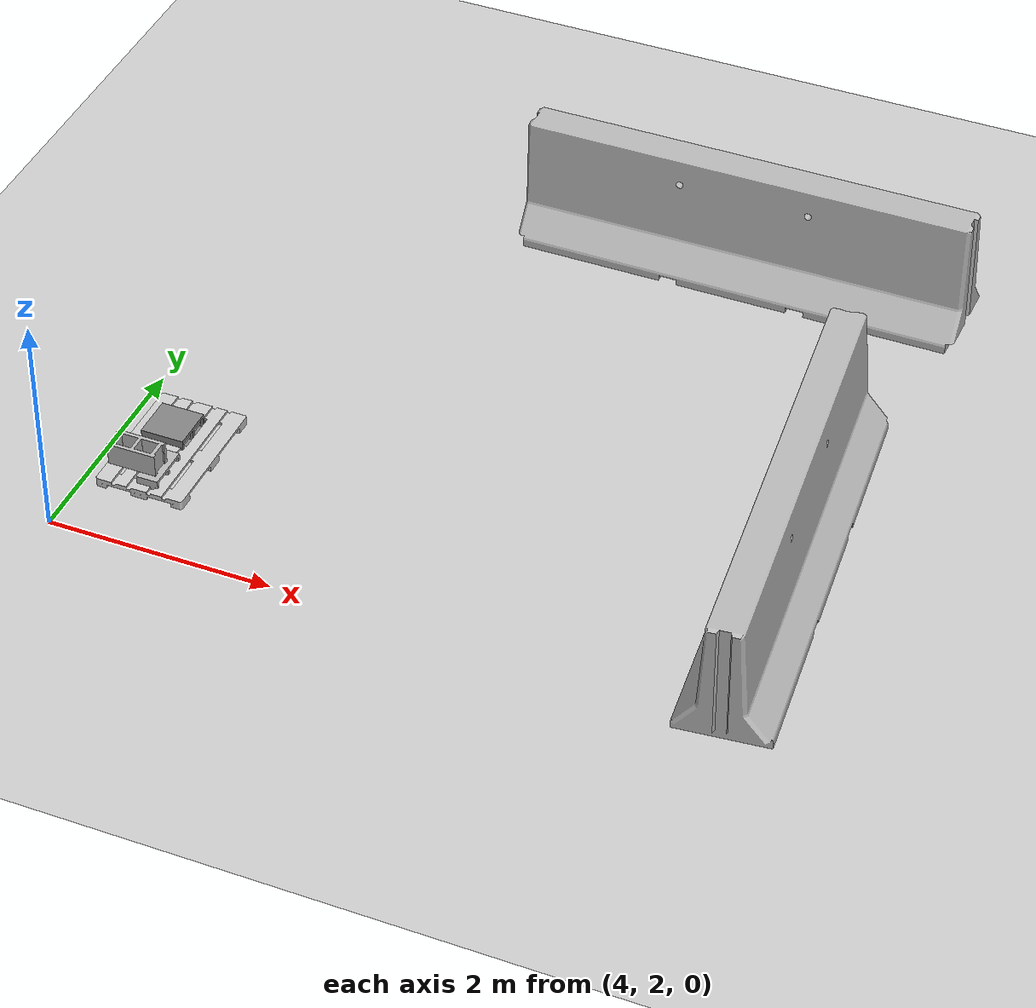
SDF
<sdf version="1.6">
 <world name="default">
  <model name="ground_plane">
   <static>1</static>
   <link name="link">
    <collision name="collision">
     <geometry><plane><normal>0 0 1</normal><size>100 100</size></plane></geometry>
     <surface>
      <contact><collide_bitmask>65535</collide_bitmask></contact>
      <friction><ode><mu>100</mu><mu2>50</mu2></ode></friction>
     </surface>
    </collision>
    <visual name="visual">
     <cast_shadows>0</cast_shadows>
     <geometry><plane><normal>0 0 1</normal><size>100 100</size></plane></geometry>
     <material>
      <script><uri>file://media/materials/scripts/gazebo.material</uri><name>Gazebo/Grey</name></script>
     </material>
    </visual>
   </link>
  </model>
  <model name="euro_pallet_static">
   <link name="link">
    <inertial>
     <mass>20</mass>
     <inertia><ixx>2.43</ixx><ixy>0</ixy><ixz>0</ixz><iyy>1.1</iyy><iyz>0</iyz><izz>3.47</izz></inertia>
    </inertial>
    <visual name="visual">
     <pose>0 0 0.05 0 -0 0</pose>
     <geometry><mesh><uri>model://euro_pallet/meshes/pallet.dae</uri><scale>0.1 0.1 0.1</scale></mesh></geometry>
    </visual>
    <collision name="collision">
     <pose>0 0 0.05 0 -0 0</pose>
     <geometry>
      <mesh><uri>~/.gazebo/models/euro_pallet/meshes/pallet.dae</uri><scale>0.1 0.1 0.1</scale></mesh>
     </geometry>
     <surface>
      <friction>
       <ode><mu>1</mu><mu2>1</mu2><fdir1>0 0 0</fdir1><slip1>0</slip1><slip2>0</slip2></ode>
       <torsional>
        <coefficient>1</coefficient>
        <patch_radius>0</patch_radius>
        <surface_radius>0</surface_radius>
        <use_patch_radius>1</use_patch_radius>
        <ode><slip>0</slip></ode>
       </torsional>
      </friction>
      <bounce><restitution_coefficient>0</restitution_coefficient><threshold>1e+06</threshold></bounce>
      <contact>
       <collide_without_contact>0</collide_without_contact>
       <collide_without_contact_bitmask>1</collide_without_contact_bitmask>
       <collide_bitmask>1</collide_bitmask>
       <ode>
        <soft_cfm>0</soft_cfm>
        <soft_erp>0.2</soft_erp>
        <kp>1e+13</kp>
        <kd>1</kd>
        <max_vel>0.01</max_vel>
        <min_depth>0</min_depth>
       </ode>
       <bullet>
        <split_impulse>1</split_impulse>
        <split_impulse_penetration_threshold>-0.01</split_impulse_penetration_threshold>
        <soft_cfm>0</soft_cfm>
        <soft_erp>0.2</soft_erp>
        <kp>1e+13</kp>
        <kd>1</kd>
       </bullet>
      </contact>
     </surface>
    </collision>
   </link>
   <static>1</static>
   <pose>4.52441 3.15783 0 0 -0 0</pose>
  </model>
  <model name="cinder_block_2_static_0">
   <link name="link">
    <inertial>
     <pose>0 0 0.071438 0 -0 0</pose>
     <mass>5</mass>
     <inertia>
      <ixx>0.06908</ixx>
      <ixy>0</ixy>
      <iyy>0.028705</iyy>
      <ixz>0</ixz>
      <iyz>0</iyz>
      <izz>0.073708</izz>
     </inertia>
    </inertial>
    <visual name="visual">
     <geometry><mesh><uri>model://cinder_block_2/meshes/cinder_block.dae</uri></mesh></geometry>
    </visual>
    <collision name="top">
     <pose>0 0 0.130175 0 -0 0</pose>
     <geometry><box><size>0.19368 0.396875 0.0254</size></box></geometry>
     <surface>
      <friction>
       <ode><mu>1</mu><mu2>1</mu2><fdir1>0 0 0</fdir1><slip1>0</slip1><slip2>0</slip2></ode>
       <torsional>
        <coefficient>1</coefficient>
        <patch_radius>0</patch_radius>
        <surface_radius>0</surface_radius>
        <use_patch_radius>1</use_patch_radius>
        <ode><slip>0</slip></ode>
       </torsional>
      </friction>
      <bounce><restitution_coefficient>0</restitution_coefficient><threshold>1e+06</threshold></bounce>
      <contact>
       <collide_without_contact>0</collide_without_contact>
       <collide_without_contact_bitmask>1</collide_without_contact_bitmask>
       <collide_bitmask>1</collide_bitmask>
       <ode>
        <soft_cfm>0</soft_cfm>
        <soft_erp>0.2</soft_erp>
        <kp>1e+13</kp>
        <kd>1</kd>
        <max_vel>0.1</max_vel>
        <min_depth>0.001</min_depth>
       </ode>
       <bullet>
        <split_impulse>1</split_impulse>
        <split_impulse_penetration_threshold>-0.01</split_impulse_penetration_threshold>
        <soft_cfm>0</soft_cfm>
        <soft_erp>0.2</soft_erp>
        <kp>1e+13</kp>
        <kd>1</kd>
       </bullet>
      </contact>
     </surface>
    </collision>
    <collision name="bottom">
     <pose>0 0 0.0127 0 -0 0</pose>
     <geometry><box><size>0.19368 0.396875 0.0254</size></box></geometry>
     <surface>
      <friction>
       <ode><mu>1</mu><mu2>1</mu2><fdir1>0 0 0</fdir1><slip1>0</slip1><slip2>0</slip2></ode>
       <torsional>
        <coefficient>1</coefficient>
        <patch_radius>0</patch_radius>
        <surface_radius>0</surface_radius>
        <use_patch_radius>1</use_patch_radius>
        <ode><slip>0</slip></ode>
       </torsional>
      </friction>
      <bounce><restitution_coefficient>0</restitution_coefficient><threshold>1e+06</threshold></bounce>
      <contact>
       <collide_without_contact>0</collide_without_contact>
       <collide_without_contact_bitmask>1</collide_without_contact_bitmask>
       <collide_bitmask>1</collide_bitmask>
       <ode>
        <soft_cfm>0</soft_cfm>
        <soft_erp>0.2</soft_erp>
        <kp>1e+13</kp>
        <kd>1</kd>
        <max_vel>0.1</max_vel>
        <min_depth>0.001</min_depth>
       </ode>
       <bullet>
        <split_impulse>1</split_impulse>
        <split_impulse_penetration_threshold>-0.01</split_impulse_penetration_threshold>
        <soft_cfm>0</soft_cfm>
        <soft_erp>0.2</soft_erp>
        <kp>1e+13</kp>
        <kd>1</kd>
       </bullet>
      </contact>
     </surface>
    </collision>
    <collision name="left">
     <pose>0 -0.185738 0.071438 0 -0 0</pose>
     <geometry><box><size>0.19368 0.0254 0.092075</size></box></geometry>
     <surface>
      <friction>
       <ode><mu>1</mu><mu2>1</mu2><fdir1>0 0 0</fdir1><slip1>0</slip1><slip2>0</slip2></ode>
       <torsional>
        <coefficient>1</coefficient>
        <patch_radius>0</patch_radius>
        <surface_radius>0</surface_radius>
        <use_patch_radius>1</use_patch_radius>
        <ode><slip>0</slip></ode>
       </torsional>
      </friction>
      <bounce><restitution_coefficient>0</restitution_coefficient><threshold>1e+06</threshold></bounce>
      <contact>
       <collide_without_contact>0</collide_without_contact>
       <collide_without_contact_bitmask>1</collide_without_contact_bitmask>
       <collide_bitmask>1</collide_bitmask>
       <ode>
        <soft_cfm>0</soft_cfm>
        <soft_erp>0.2</soft_erp>
        <kp>1e+13</kp>
        <kd>1</kd>
        <max_vel>0.1</max_vel>
        <min_depth>0.001</min_depth>
       </ode>
       <bullet>
        <split_impulse>1</split_impulse>
        <split_impulse_penetration_threshold>-0.01</split_impulse_penetration_threshold>
        <soft_cfm>0</soft_cfm>
        <soft_erp>0.2</soft_erp>
        <kp>1e+13</kp>
        <kd>1</kd>
       </bullet>
      </contact>
     </surface>
    </collision>
    <collision name="middle">
     <pose>0 0 0.071438 0 -0 0</pose>
     <geometry><box><size>0.19368 0.0254 0.092075</size></box></geometry>
     <surface>
      <friction>
       <ode><mu>1</mu><mu2>1</mu2><fdir1>0 0 0</fdir1><slip1>0</slip1><slip2>0</slip2></ode>
       <torsional>
        <coefficient>1</coefficient>
        <patch_radius>0</patch_radius>
        <surface_radius>0</surface_radius>
        <use_patch_radius>1</use_patch_radius>
        <ode><slip>0</slip></ode>
       </torsional>
      </friction>
      <bounce><restitution_coefficient>0</restitution_coefficient><threshold>1e+06</threshold></bounce>
      <contact>
       <collide_without_contact>0</collide_without_contact>
       <collide_without_contact_bitmask>1</collide_without_contact_bitmask>
       <collide_bitmask>1</collide_bitmask>
       <ode>
        <soft_cfm>0</soft_cfm>
        <soft_erp>0.2</soft_erp>
        <kp>1e+13</kp>
        <kd>1</kd>
        <max_vel>0.1</max_vel>
        <min_depth>0.001</min_depth>
       </ode>
       <bullet>
        <split_impulse>1</split_impulse>
        <split_impulse_penetration_threshold>-0.01</split_impulse_penetration_threshold>
        <soft_cfm>0</soft_cfm>
        <soft_erp>0.2</soft_erp>
        <kp>1e+13</kp>
        <kd>1</kd>
       </bullet>
      </contact>
     </surface>
    </collision>
    <collision name="right">
     <pose>0 0.185738 0.071438 0 -0 0</pose>
     <geometry><box><size>0.19368 0.0254 0.092075</size></box></geometry>
     <surface>
      <friction>
       <ode><mu>1</mu><mu2>1</mu2><fdir1>0 0 0</fdir1><slip1>0</slip1><slip2>0</slip2></ode>
       <torsional>
        <coefficient>1</coefficient>
        <patch_radius>0</patch_radius>
        <surface_radius>0</surface_radius>
        <use_patch_radius>1</use_patch_radius>
        <ode><slip>0</slip></ode>
       </torsional>
      </friction>
      <bounce><restitution_coefficient>0</restitution_coefficient><threshold>1e+06</threshold></bounce>
      <contact>
       <collide_without_contact>0</collide_without_contact>
       <collide_without_contact_bitmask>1</collide_without_contact_bitmask>
       <collide_bitmask>1</collide_bitmask>
       <ode>
        <soft_cfm>0</soft_cfm>
        <soft_erp>0.2</soft_erp>
        <kp>1e+13</kp>
        <kd>1</kd>
        <max_vel>0.1</max_vel>
        <min_depth>0.001</min_depth>
       </ode>
       <bullet>
        <split_impulse>1</split_impulse>
        <split_impulse_penetration_threshold>-0.01</split_impulse_penetration_threshold>
        <soft_cfm>0</soft_cfm>
        <soft_erp>0.2</soft_erp>
        <kp>1e+13</kp>
        <kd>1</kd>
       </bullet>
      </contact>
     </surface>
    </collision>
   </link>
   <static>1</static>
   <pose>4.56736 2.83532 0 0 -0 0</pose>
  </model>
  <model name="cinder_block_static">
   <link name="link">
    <inertial>
     <pose>0 0 0.1016 0 -0 0</pose>
     <mass>5</mass>
     <inertia>
      <ixx>0.028705</ixx>
      <ixy>0</ixy>
      <iyy>0.073708</iyy>
      <ixz>0</ixz>
      <iyz>0</iyz>
      <izz>0.06908</izz>
     </inertia>
    </inertial>
    <visual name="visual">
     <geometry><mesh><uri>model://cinder_block/meshes/cinder_block.dae</uri></mesh></geometry>
    </visual>
    <collision name="left">
     <pose>0 -0.08465 0.1016 0 -0 0</pose>
     <geometry><box><size>0.43495 0.0339 0.2032</size></box></geometry>
     <surface>
      <friction>
       <ode><mu>1</mu><mu2>1</mu2><fdir1>0 0 0</fdir1><slip1>0</slip1><slip2>0</slip2></ode>
       <torsional>
        <coefficient>1</coefficient>
        <patch_radius>0</patch_radius>
        <surface_radius>0</surface_radius>
        <use_patch_radius>1</use_patch_radius>
        <ode><slip>0</slip></ode>
       </torsional>
      </friction>
      <bounce><restitution_coefficient>0</restitution_coefficient><threshold>1e+06</threshold></bounce>
      <contact>
       <collide_without_contact>0</collide_without_contact>
       <collide_without_contact_bitmask>1</collide_without_contact_bitmask>
       <collide_bitmask>1</collide_bitmask>
       <ode>
        <soft_cfm>0</soft_cfm>
        <soft_erp>0.2</soft_erp>
        <kp>1e+13</kp>
        <kd>1</kd>
        <max_vel>0.1</max_vel>
        <min_depth>0.001</min_depth>
       </ode>
       <bullet>
        <split_impulse>1</split_impulse>
        <split_impulse_penetration_threshold>-0.01</split_impulse_penetration_threshold>
        <soft_cfm>0</soft_cfm>
        <soft_erp>0.2</soft_erp>
        <kp>1e+13</kp>
        <kd>1</kd>
       </bullet>
      </contact>
     </surface>
    </collision>
    <collision name="right">
     <pose>0 0.08465 0.1016 0 -0 0</pose>
     <geometry><box><size>0.43495 0.0339 0.2032</size></box></geometry>
     <surface>
      <friction>
       <ode><mu>1</mu><mu2>1</mu2><fdir1>0 0 0</fdir1><slip1>0</slip1><slip2>0</slip2></ode>
       <torsional>
        <coefficient>1</coefficient>
        <patch_radius>0</patch_radius>
        <surface_radius>0</surface_radius>
        <use_patch_radius>1</use_patch_radius>
        <ode><slip>0</slip></ode>
       </torsional>
      </friction>
      <bounce><restitution_coefficient>0</restitution_coefficient><threshold>1e+06</threshold></bounce>
      <contact>
       <collide_without_contact>0</collide_without_contact>
       <collide_without_contact_bitmask>1</collide_without_contact_bitmask>
       <collide_bitmask>1</collide_bitmask>
       <ode>
        <soft_cfm>0</soft_cfm>
        <soft_erp>0.2</soft_erp>
        <kp>1e+13</kp>
        <kd>1</kd>
        <max_vel>0.1</max_vel>
        <min_depth>0.001</min_depth>
       </ode>
       <bullet>
        <split_impulse>1</split_impulse>
        <split_impulse_penetration_threshold>-0.01</split_impulse_penetration_threshold>
        <soft_cfm>0</soft_cfm>
        <soft_erp>0.2</soft_erp>
        <kp>1e+13</kp>
        <kd>1</kd>
       </bullet>
      </contact>
     </surface>
    </collision>
    <collision name="front">
     <pose>0.18625 0 0.1016 0 -0 0</pose>
     <geometry><box><size>0.0339 0.1354 0.203</size></box></geometry>
     <surface>
      <friction>
       <ode><mu>1</mu><mu2>1</mu2><fdir1>0 0 0</fdir1><slip1>0</slip1><slip2>0</slip2></ode>
       <torsional>
        <coefficient>1</coefficient>
        <patch_radius>0</patch_radius>
        <surface_radius>0</surface_radius>
        <use_patch_radius>1</use_patch_radius>
        <ode><slip>0</slip></ode>
       </torsional>
      </friction>
      <bounce><restitution_coefficient>0</restitution_coefficient><threshold>1e+06</threshold></bounce>
      <contact>
       <collide_without_contact>0</collide_without_contact>
       <collide_without_contact_bitmask>1</collide_without_contact_bitmask>
       <collide_bitmask>1</collide_bitmask>
       <ode>
        <soft_cfm>0</soft_cfm>
        <soft_erp>0.2</soft_erp>
        <kp>1e+13</kp>
        <kd>1</kd>
        <max_vel>0.1</max_vel>
        <min_depth>0.001</min_depth>
       </ode>
       <bullet>
        <split_impulse>1</split_impulse>
        <split_impulse_penetration_threshold>-0.01</split_impulse_penetration_threshold>
        <soft_cfm>0</soft_cfm>
        <soft_erp>0.2</soft_erp>
        <kp>1e+13</kp>
        <kd>1</kd>
       </bullet>
      </contact>
     </surface>
    </collision>
    <collision name="middle">
     <pose>0 0 0.1016 0 -0 0</pose>
     <geometry><box><size>0.0339 0.1354 0.203</size></box></geometry>
     <surface>
      <friction>
       <ode><mu>1</mu><mu2>1</mu2><fdir1>0 0 0</fdir1><slip1>0</slip1><slip2>0</slip2></ode>
       <torsional>
        <coefficient>1</coefficient>
        <patch_radius>0</patch_radius>
        <surface_radius>0</surface_radius>
        <use_patch_radius>1</use_patch_radius>
        <ode><slip>0</slip></ode>
       </torsional>
      </friction>
      <bounce><restitution_coefficient>0</restitution_coefficient><threshold>1e+06</threshold></bounce>
      <contact>
       <collide_without_contact>0</collide_without_contact>
       <collide_without_contact_bitmask>1</collide_without_contact_bitmask>
       <collide_bitmask>1</collide_bitmask>
       <ode>
        <soft_cfm>0</soft_cfm>
        <soft_erp>0.2</soft_erp>
        <kp>1e+13</kp>
        <kd>1</kd>
        <max_vel>0.1</max_vel>
        <min_depth>0.001</min_depth>
       </ode>
       <bullet>
        <split_impulse>1</split_impulse>
        <split_impulse_penetration_threshold>-0.01</split_impulse_penetration_threshold>
        <soft_cfm>0</soft_cfm>
        <soft_erp>0.2</soft_erp>
        <kp>1e+13</kp>
        <kd>1</kd>
       </bullet>
      </contact>
     </surface>
    </collision>
    <collision name="back">
     <pose>-0.18625 0 0.1016 0 -0 0</pose>
     <geometry><box><size>0.0339 0.1354 0.203</size></box></geometry>
     <surface>
      <friction>
       <ode><mu>1</mu><mu2>1</mu2><fdir1>0 0 0</fdir1><slip1>0</slip1><slip2>0</slip2></ode>
       <torsional>
        <coefficient>1</coefficient>
        <patch_radius>0</patch_radius>
        <surface_radius>0</surface_radius>
        <use_patch_radius>1</use_patch_radius>
        <ode><slip>0</slip></ode>
       </torsional>
      </friction>
      <bounce><restitution_coefficient>0</restitution_coefficient><threshold>1e+06</threshold></bounce>
      <contact>
       <collide_without_contact>0</collide_without_contact>
       <collide_without_contact_bitmask>1</collide_without_contact_bitmask>
       <collide_bitmask>1</collide_bitmask>
       <ode>
        <soft_cfm>0</soft_cfm>
        <soft_erp>0.2</soft_erp>
        <kp>1e+13</kp>
        <kd>1</kd>
        <max_vel>0.1</max_vel>
        <min_depth>0.001</min_depth>
       </ode>
       <bullet>
        <split_impulse>1</split_impulse>
        <split_impulse_penetration_threshold>-0.01</split_impulse_penetration_threshold>
        <soft_cfm>0</soft_cfm>
        <soft_erp>0.2</soft_erp>
        <kp>1e+13</kp>
        <kd>1</kd>
       </bullet>
      </contact>
     </surface>
    </collision>
   </link>
   <static>1</static>
   <pose>4.40047 2.79927 0.14306 0 -0 0</pose>
  </model>
  <model name="cinder_block_wide_static">
   <link name="link">
    <inertial>
     <pose>0 0 0.071438 0 -0 0</pose>
     <mass>5</mass>
     <inertia>
      <ixx>0.0681466</ixx>
      <ixy>0</ixy>
      <iyy>0.0681466</iyy>
      <ixz>0</ixz>
      <iyz>0</iyz>
      <izz>0.124808</izz>
     </inertia>
    </inertial>
    <visual name="visual">
     <geometry><mesh><uri>model://cinder_block_wide/meshes/cinder_block_wide.dae</uri></mesh></geometry>
    </visual>
    <collision name="top">
     <pose>0 0 0.130175 0 -0 0</pose>
     <geometry><box><size>0.387354 0.387354 0.0254</size></box></geometry>
     <surface>
      <friction>
       <ode><mu>1</mu><mu2>1</mu2><fdir1>0 0 0</fdir1><slip1>0</slip1><slip2>0</slip2></ode>
       <torsional>
        <coefficient>1</coefficient>
        <patch_radius>0</patch_radius>
        <surface_radius>0</surface_radius>
        <use_patch_radius>1</use_patch_radius>
        <ode><slip>0</slip></ode>
       </torsional>
      </friction>
      <bounce><restitution_coefficient>0</restitution_coefficient><threshold>1e+06</threshold></bounce>
      <contact>
       <collide_without_contact>0</collide_without_contact>
       <collide_without_contact_bitmask>1</collide_without_contact_bitmask>
       <collide_bitmask>1</collide_bitmask>
       <ode>
        <soft_cfm>0</soft_cfm>
        <soft_erp>0.2</soft_erp>
        <kp>1e+13</kp>
        <kd>1</kd>
        <max_vel>0.1</max_vel>
        <min_depth>0.001</min_depth>
       </ode>
       <bullet>
        <split_impulse>1</split_impulse>
        <split_impulse_penetration_threshold>-0.01</split_impulse_penetration_threshold>
        <soft_cfm>0</soft_cfm>
        <soft_erp>0.2</soft_erp>
        <kp>1e+13</kp>
        <kd>1</kd>
       </bullet>
      </contact>
     </surface>
    </collision>
    <collision name="bottom">
     <pose>0 0 0.0127 0 -0 0</pose>
     <geometry><box><size>0.387354 0.387354 0.0254</size></box></geometry>
     <surface>
      <friction>
       <ode><mu>1</mu><mu2>1</mu2><fdir1>0 0 0</fdir1><slip1>0</slip1><slip2>0</slip2></ode>
       <torsional>
        <coefficient>1</coefficient>
        <patch_radius>0</patch_radius>
        <surface_radius>0</surface_radius>
        <use_patch_radius>1</use_patch_radius>
        <ode><slip>0</slip></ode>
       </torsional>
      </friction>
      <bounce><restitution_coefficient>0</restitution_coefficient><threshold>1e+06</threshold></bounce>
      <contact>
       <collide_without_contact>0</collide_without_contact>
       <collide_without_contact_bitmask>1</collide_without_contact_bitmask>
       <collide_bitmask>1</collide_bitmask>
       <ode>
        <soft_cfm>0</soft_cfm>
        <soft_erp>0.2</soft_erp>
        <kp>1e+13</kp>
        <kd>1</kd>
        <max_vel>0.1</max_vel>
        <min_depth>0.001</min_depth>
       </ode>
       <bullet>
        <split_impulse>1</split_impulse>
        <split_impulse_penetration_threshold>-0.01</split_impulse_penetration_threshold>
        <soft_cfm>0</soft_cfm>
        <soft_erp>0.2</soft_erp>
        <kp>1e+13</kp>
        <kd>1</kd>
       </bullet>
      </contact>
     </surface>
    </collision>
    <collision name="left">
     <pose>0 -0.183355 0.071438 0 -0 0</pose>
     <geometry><box><size>0.387354 0.020643 0.092075</size></box></geometry>
     <surface>
      <friction>
       <ode><mu>1</mu><mu2>1</mu2><fdir1>0 0 0</fdir1><slip1>0</slip1><slip2>0</slip2></ode>
       <torsional>
        <coefficient>1</coefficient>
        <patch_radius>0</patch_radius>
        <surface_radius>0</surface_radius>
        <use_patch_radius>1</use_patch_radius>
        <ode><slip>0</slip></ode>
       </torsional>
      </friction>
      <bounce><restitution_coefficient>0</restitution_coefficient><threshold>1e+06</threshold></bounce>
      <contact>
       <collide_without_contact>0</collide_without_contact>
       <collide_without_contact_bitmask>1</collide_without_contact_bitmask>
       <collide_bitmask>1</collide_bitmask>
       <ode>
        <soft_cfm>0</soft_cfm>
        <soft_erp>0.2</soft_erp>
        <kp>1e+13</kp>
        <kd>1</kd>
        <max_vel>0.1</max_vel>
        <min_depth>0.001</min_depth>
       </ode>
       <bullet>
        <split_impulse>1</split_impulse>
        <split_impulse_penetration_threshold>-0.01</split_impulse_penetration_threshold>
        <soft_cfm>0</soft_cfm>
        <soft_erp>0.2</soft_erp>
        <kp>1e+13</kp>
        <kd>1</kd>
       </bullet>
      </contact>
     </surface>
    </collision>
    <collision name="right">
     <pose>0 0.183355 0.071438 0 -0 0</pose>
     <geometry><box><size>0.387354 0.020643 0.092075</size></box></geometry>
     <surface>
      <friction>
       <ode><mu>1</mu><mu2>1</mu2><fdir1>0 0 0</fdir1><slip1>0</slip1><slip2>0</slip2></ode>
       <torsional>
        <coefficient>1</coefficient>
        <patch_radius>0</patch_radius>
        <surface_radius>0</surface_radius>
        <use_patch_radius>1</use_patch_radius>
        <ode><slip>0</slip></ode>
       </torsional>
      </friction>
      <bounce><restitution_coefficient>0</restitution_coefficient><threshold>1e+06</threshold></bounce>
      <contact>
       <collide_without_contact>0</collide_without_contact>
       <collide_without_contact_bitmask>1</collide_without_contact_bitmask>
       <collide_bitmask>1</collide_bitmask>
       <ode>
        <soft_cfm>0</soft_cfm>
        <soft_erp>0.2</soft_erp>
        <kp>1e+13</kp>
        <kd>1</kd>
        <max_vel>0.1</max_vel>
        <min_depth>0.001</min_depth>
       </ode>
       <bullet>
        <split_impulse>1</split_impulse>
        <split_impulse_penetration_threshold>-0.01</split_impulse_penetration_threshold>
        <soft_cfm>0</soft_cfm>
        <soft_erp>0.2</soft_erp>
        <kp>1e+13</kp>
        <kd>1</kd>
       </bullet>
      </contact>
     </surface>
    </collision>
    <collision name="middle">
     <pose>0 0 0.071438 0 -0 0</pose>
     <geometry><box><size>0.387354 0.0254 0.092075</size></box></geometry>
     <surface>
      <friction>
       <ode><mu>1</mu><mu2>1</mu2><fdir1>0 0 0</fdir1><slip1>0</slip1><slip2>0</slip2></ode>
       <torsional>
        <coefficient>1</coefficient>
        <patch_radius>0</patch_radius>
        <surface_radius>0</surface_radius>
        <use_patch_radius>1</use_patch_radius>
        <ode><slip>0</slip></ode>
       </torsional>
      </friction>
      <bounce><restitution_coefficient>0</restitution_coefficient><threshold>1e+06</threshold></bounce>
      <contact>
       <collide_without_contact>0</collide_without_contact>
       <collide_without_contact_bitmask>1</collide_without_contact_bitmask>
       <collide_bitmask>1</collide_bitmask>
       <ode>
        <soft_cfm>0</soft_cfm>
        <soft_erp>0.2</soft_erp>
        <kp>1e+13</kp>
        <kd>1</kd>
        <max_vel>0.1</max_vel>
        <min_depth>0.001</min_depth>
       </ode>
       <bullet>
        <split_impulse>1</split_impulse>
        <split_impulse_penetration_threshold>-0.01</split_impulse_penetration_threshold>
        <soft_cfm>0</soft_cfm>
        <soft_erp>0.2</soft_erp>
        <kp>1e+13</kp>
        <kd>1</kd>
       </bullet>
      </contact>
     </surface>
    </collision>
   </link>
   <static>1</static>
   <pose>4.42615 3.36728 0 0 -0 0</pose>
  </model>
  <model name="jersey_barrier_7">
   <static>1</static>
   <link name="link">
    <visual name="visual">
     <geometry><mesh><uri>model://jersey_barrier/meshes/jersey_barrier.dae</uri></mesh></geometry>
    </visual>
    <collision name="upright">
     <pose>0 0 0.5715 0 -0 0</pose>
     <geometry><box><size>4.06542 0.3063 1.143</size></box></geometry>
    </collision>
    <collision name="base">
     <pose>0 0 0.032258 0 -0 0</pose>
     <geometry><box><size>4.06542 0.8107 0.064516</size></box></geometry>
    </collision>
    <collision name="base2">
     <pose>0 0 0.1 0 -0 0</pose>
     <geometry><box><size>4.06542 0.65 0.1</size></box></geometry>
    </collision>
    <collision name="base3">
     <pose>0 0 0.2 0 -0 0</pose>
     <geometry><box><size>4.06542 0.5 0.1</size></box></geometry>
    </collision>
    <collision name="left-angle">
     <pose>0 -0.224 0.2401 0.9 -0 0</pose>
     <geometry><box><size>4.06542 0.5 0.064516</size></box></geometry>
    </collision>
    <collision name="right-angle">
     <pose>0 0.224 0.2401 -0.9 0 0</pose>
     <geometry><box><size>4.06542 0.5 0.064516</size></box></geometry>
    </collision>
   </link>
   <pose>9.70575 3.77214 0 0 -0 1.6752</pose>
  </model>
  <model name="jersey_barrier_10">
   <static>1</static>
   <link name="link">
    <visual name="visual">
     <geometry><mesh><uri>model://jersey_barrier/meshes/jersey_barrier.dae</uri></mesh></geometry>
    </visual>
    <collision name="upright">
     <pose>0 0 0.5715 0 -0 0</pose>
     <geometry><box><size>4.06542 0.3063 1.143</size></box></geometry>
    </collision>
    <collision name="base">
     <pose>0 0 0.032258 0 -0 0</pose>
     <geometry><box><size>4.06542 0.8107 0.064516</size></box></geometry>
    </collision>
    <collision name="base2">
     <pose>0 0 0.1 0 -0 0</pose>
     <geometry><box><size>4.06542 0.65 0.1</size></box></geometry>
    </collision>
    <collision name="base3">
     <pose>0 0 0.2 0 -0 0</pose>
     <geometry><box><size>4.06542 0.5 0.1</size></box></geometry>
    </collision>
    <collision name="left-angle">
     <pose>0 -0.224 0.2401 0.9 -0 0</pose>
     <geometry><box><size>4.06542 0.5 0.064516</size></box></geometry>
    </collision>
    <collision name="right-angle">
     <pose>0 0.224 0.2401 -0.9 0 0</pose>
     <geometry><box><size>4.06542 0.5 0.064516</size></box></geometry>
    </collision>
   </link>
   <pose>8.05917 7.33314 0 0 -0 0</pose>
  </model>
 </world>
</sdf>
